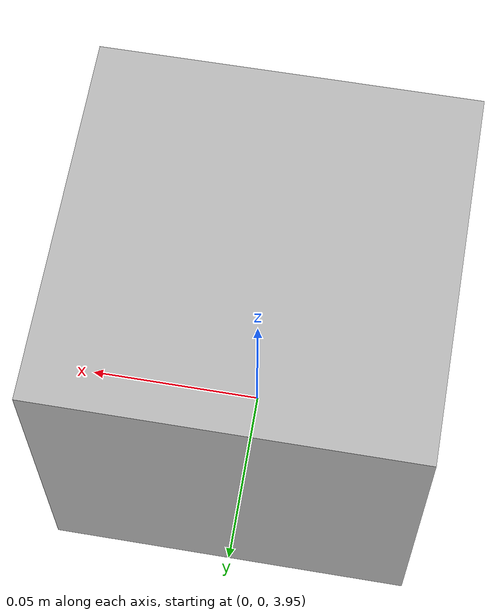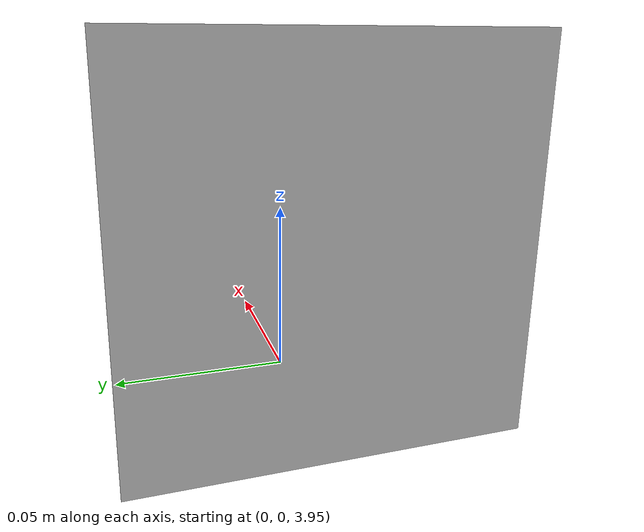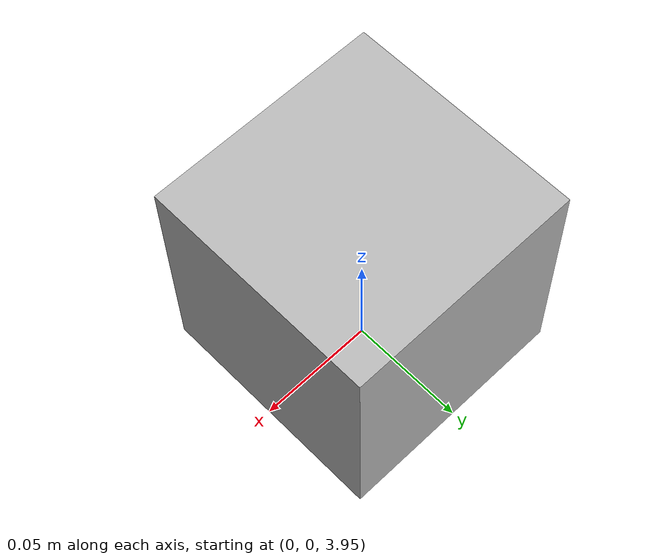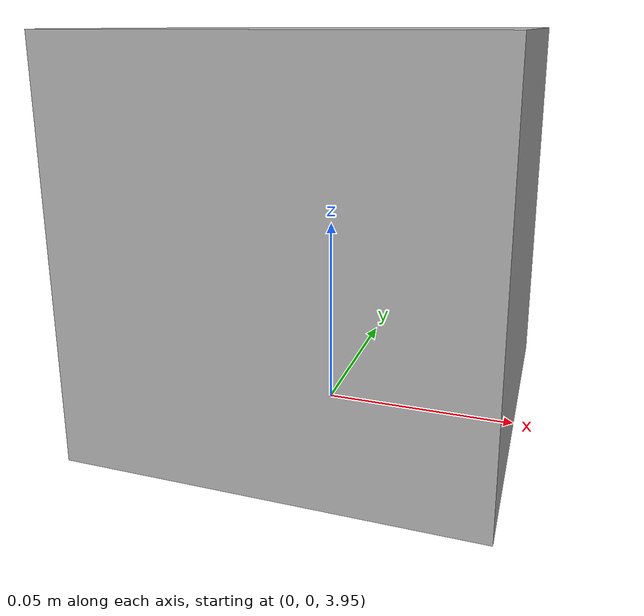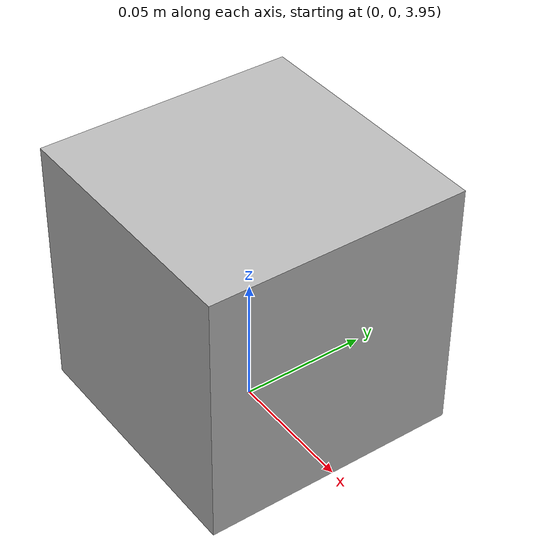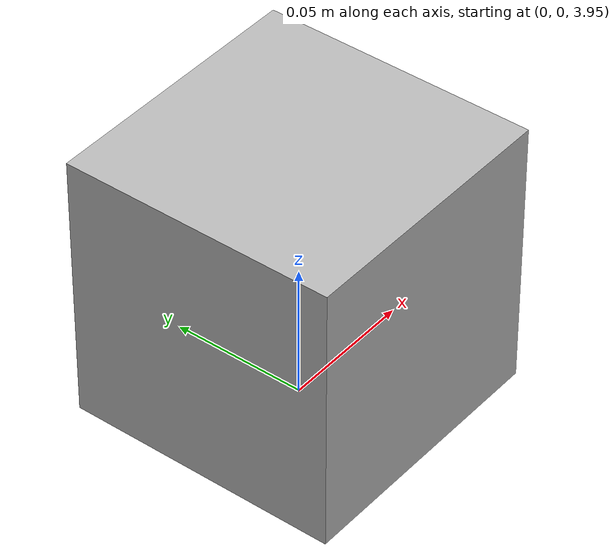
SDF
<?xml version="1.0" ?>
<sdf version="1.6">
  <world name="drone_test_world">
    <include>
      <uri>model://sun</uri>
    </include>

    <include>
      <uri>model://ground_plane</uri>
    </include>

    <model name="overhead_tracking_camera">
      <static>true</static>
      <pose>0.0 0.0 4.0 0 1.5707 0</pose>
      <link name="camera_link">
        <visual name="visual">
          <geometry>
            <box>
              <size>0.1 0.1 0.1</size>
            </box>
          </geometry>
        </visual>
        <sensor name="tracking_camera" type="camera">
          <always_on>true</always_on>
          <update_rate>30.0</update_rate>
          <camera>
            <horizontal_fov>1.3962634</horizontal_fov>
            <image>
              <width>640</width>
              <height>480</height>
              <format>R8G8B8</format>
            </image>
            <clip>
              <near>0.1</near>
              <far>100</far>
            </clip>
          </camera>
          <plugin name="camera_controller" filename="libgazebo_ros_camera.so">
            <ros>
              <namespace>overhead_camera</namespace>
              <remapping>overhead_camera/image_raw:=image_raw</remapping>
              <remapping>overhead_camera/camera_info:=camera_info</remapping>
            </ros>
            <camera_name>overhead_camera</camera_name>
            <frame_name>camera_link</frame_name>
            </plugin>
        </sensor>
      </link>
    </model>

  </world>
</sdf>
